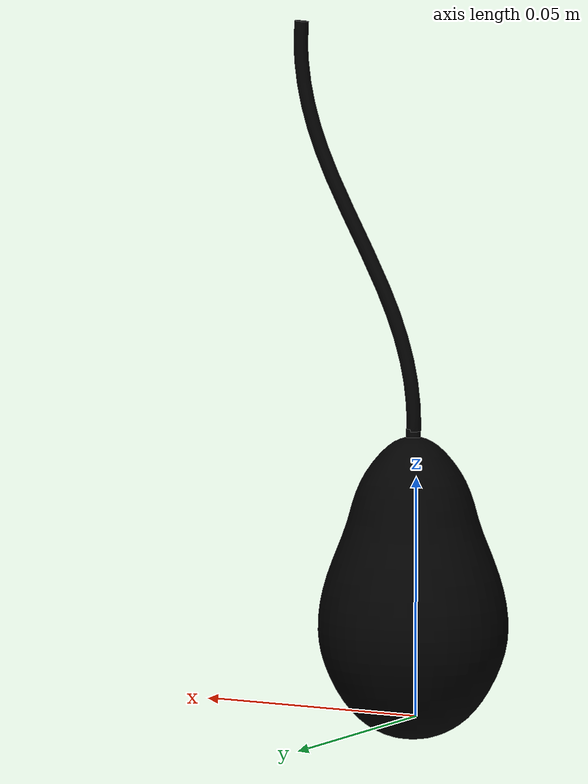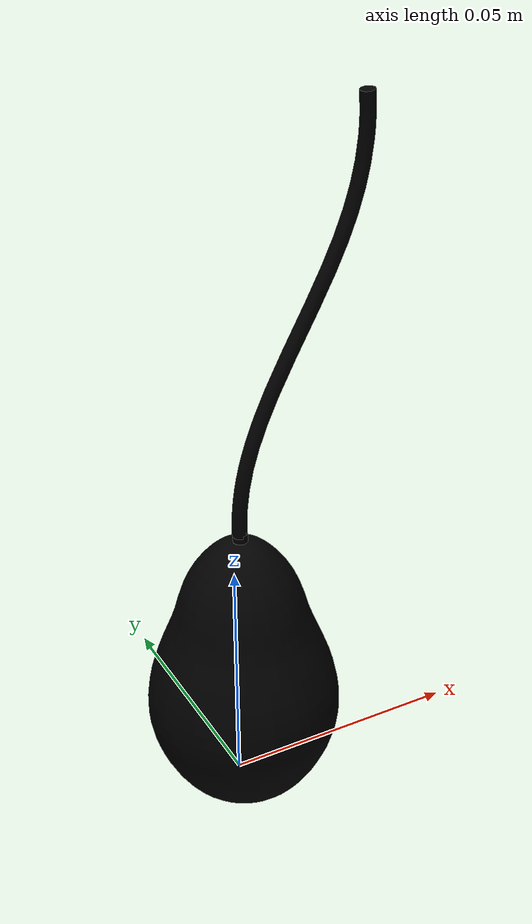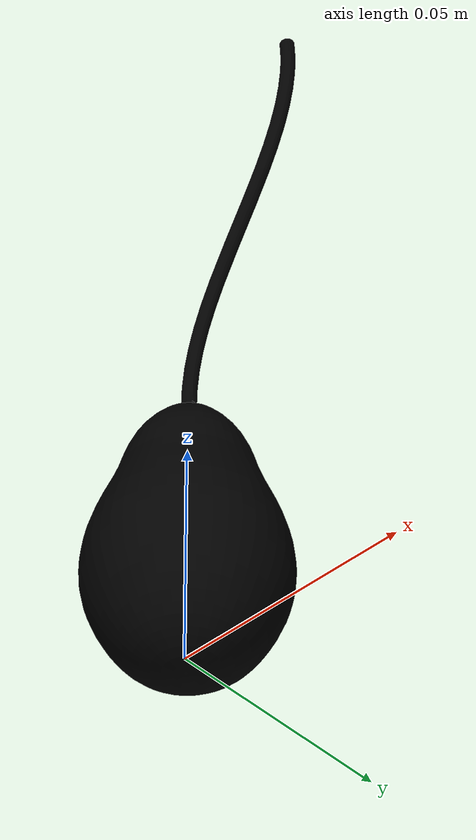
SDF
<?xml version='1.0'?>
<sdf version='1.7'>
  <model name='myavo_50'>
    <link name='avocado_fruit'>
      <inertial>
        <pose>0 0 0 0 -0 0</pose>
        <mass>0</mass>
        <inertia>
          <ixx>0</ixx>
          <ixy>0</ixy>
          <ixz>0</ixz>
          <iyy>0</iyy>
          <iyz>0</iyz>
          <izz>0</izz>
        </inertia>
      </inertial>
      <self_collide>0</self_collide>
      <enable_wind>0</enable_wind>
      <kinematic>0</kinematic>
      <pose>-0 0 0 0 0 0</pose>
      <gravity>0</gravity>
      <visual name='avocado_fruit_visual'>
        <pose>0.0011 -0.0007 0 0 -0 0</pose>
        <geometry>
          <mesh>
            <scale>0.5 0.5 0.5</scale>
            <uri>/home/jcd/gsnbv_ws/src/simulation_environment/sdfs/myavo_50/meshes/avocado_fruit.STL</uri>
          </mesh>
        </geometry>
        <material>
          <shader type='pixel'>
            <normal_map>__default__</normal_map>
          </shader>
          <script>
            <name>ModelPreview_1::avocado_fruit::avocado_fruit_visual_MATERIAL_</name>
          </script>
          <ambient>0.106 0.235 0.141 1</ambient>
          <diffuse>0 0 0 1</diffuse>
          <specular>0 0 0 1</specular>
          <emissive>0 0 0 1</emissive>
        </material>
        <transparency>0</transparency>
        <cast_shadows>1</cast_shadows>
      </visual>
      <visual name='avocado_fruit_fixed_joint_lump__peduncle_visual_1'>
        <pose>0.001 -0.0007 0.0595 1.5708 -0 0</pose>
        <geometry>
          <mesh>
            <scale>0.5 0.5 0.5</scale>
            <uri>/home/jcd/gsnbv_ws/src/simulation_environment/sdfs/myavo_50/meshes/peduncle.STL</uri>
          </mesh>
        </geometry>
        <material>
          <shader type='pixel'>
            <normal_map>__default__</normal_map>
          </shader>
          <script>
            <name>ModelPreview_1::avocado_fruit::avocado_fruit_fixed_joint_lump__peduncle_visual_1_MATERIAL_</name>
          </script>
          <ambient>0.198 0.606 0.22 1</ambient>
          <diffuse>0 0 0 1</diffuse>
          <specular>0 0 0 1</specular>
          <emissive>0 0 0 1</emissive>
        </material>
        <transparency>0</transparency>
        <cast_shadows>1</cast_shadows>
      </visual>
      <collision name='avocado_fruit_collision'>
        <laser_retro>0</laser_retro>
        <max_contacts>10</max_contacts>
        <pose>0 0 0 0 -0 0</pose>
        <geometry>
          <mesh>
            <uri>/home/jcd/gsnbv_ws/src/simulation_environment/sdfs/myavo_50/meshes/avocado_fruit.STL</uri>
            <scale>1 1 1</scale>
          </mesh>
        </geometry>
        <surface>
          <friction>
            <ode>
              <mu>1</mu>
              <mu2>1</mu2>
              <fdir1>0 0 0</fdir1>
              <slip1>0</slip1>
              <slip2>0</slip2>
            </ode>
            <torsional>
              <coefficient>1</coefficient>
              <patch_radius>0</patch_radius>
              <surface_radius>0</surface_radius>
              <use_patch_radius>1</use_patch_radius>
              <ode>
                <slip>0</slip>
              </ode>
            </torsional>
          </friction>
          <bounce>
            <restitution_coefficient>0</restitution_coefficient>
            <threshold>1e+06</threshold>
          </bounce>
          <contact>
            <collide_without_contact>0</collide_without_contact>
            <collide_without_contact_bitmask>1</collide_without_contact_bitmask>
            <collide_bitmask>1</collide_bitmask>
            <ode>
              <soft_cfm>0</soft_cfm>
              <soft_erp>0.2</soft_erp>
              <kp>1e+13</kp>
              <kd>1</kd>
              <max_vel>0.01</max_vel>
              <min_depth>0</min_depth>
            </ode>
            <bullet>
              <split_impulse>1</split_impulse>
              <split_impulse_penetration_threshold>-0.01</split_impulse_penetration_threshold>
              <soft_cfm>0</soft_cfm>
              <soft_erp>0.2</soft_erp>
              <kp>1e+13</kp>
              <kd>1</kd>
            </bullet>
          </contact>
        </surface>
      </collision>
      <collision name='avocado_fruit_fixed_joint_lump__peduncle_collision_1'>
        <laser_retro>0</laser_retro>
        <max_contacts>10</max_contacts>
        <pose>0 0 0.12002 1.5708 -0 0</pose>
        <geometry>
          <mesh>
            <uri>/home/jcd/gsnbv_ws/src/simulation_environment/sdfs/myavo_50/meshes/peduncle.STL</uri>
            <scale>1 1 1</scale>
          </mesh>
        </geometry>
        <surface>
          <friction>
            <ode>
              <mu>1</mu>
              <mu2>1</mu2>
              <fdir1>0 0 0</fdir1>
              <slip1>0</slip1>
              <slip2>0</slip2>
            </ode>
            <torsional>
              <coefficient>1</coefficient>
              <patch_radius>0</patch_radius>
              <surface_radius>0</surface_radius>
              <use_patch_radius>1</use_patch_radius>
              <ode>
                <slip>0</slip>
              </ode>
            </torsional>
          </friction>
          <bounce>
            <restitution_coefficient>0</restitution_coefficient>
            <threshold>1e+06</threshold>
          </bounce>
          <contact>
            <collide_without_contact>0</collide_without_contact>
            <collide_without_contact_bitmask>1</collide_without_contact_bitmask>
            <collide_bitmask>1</collide_bitmask>
            <ode>
              <soft_cfm>0</soft_cfm>
              <soft_erp>0.2</soft_erp>
              <kp>1e+13</kp>
              <kd>1</kd>
              <max_vel>0.01</max_vel>
              <min_depth>0</min_depth>
            </ode>
            <bullet>
              <split_impulse>1</split_impulse>
              <split_impulse_penetration_threshold>-0.01</split_impulse_penetration_threshold>
              <soft_cfm>0</soft_cfm>
              <soft_erp>0.2</soft_erp>
              <kp>1e+13</kp>
              <kd>1</kd>
            </bullet>
          </contact>
        </surface>
      </collision>

    </link>
    <static>0</static>
    <allow_auto_disable>1</allow_auto_disable>
  </model>
</sdf>
